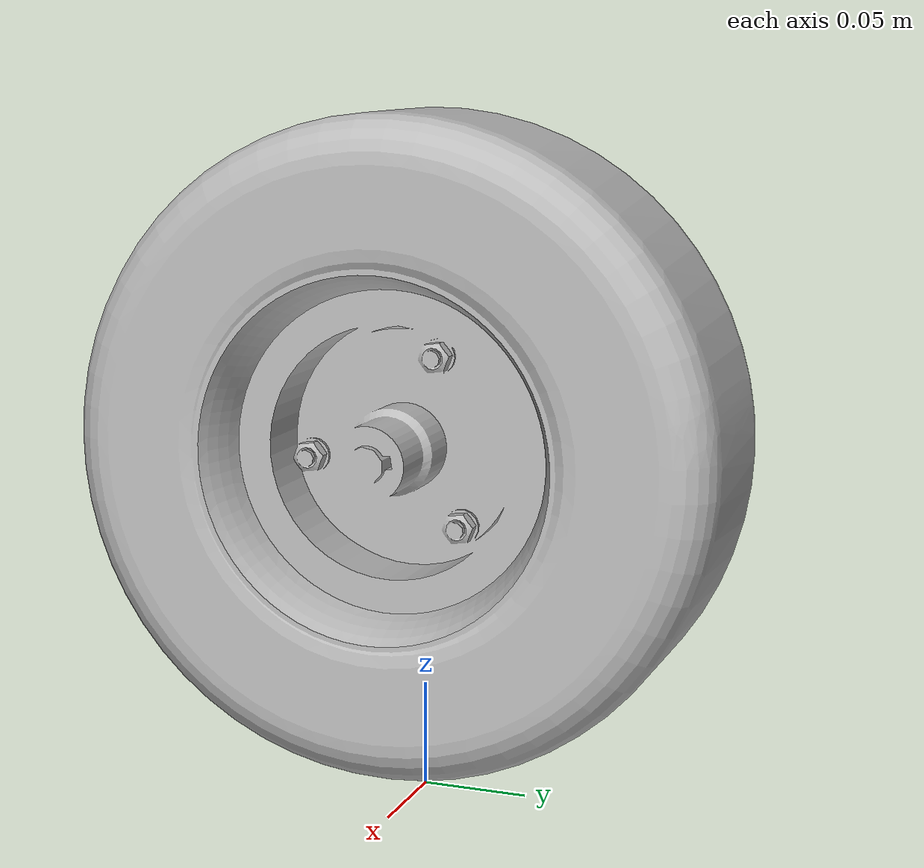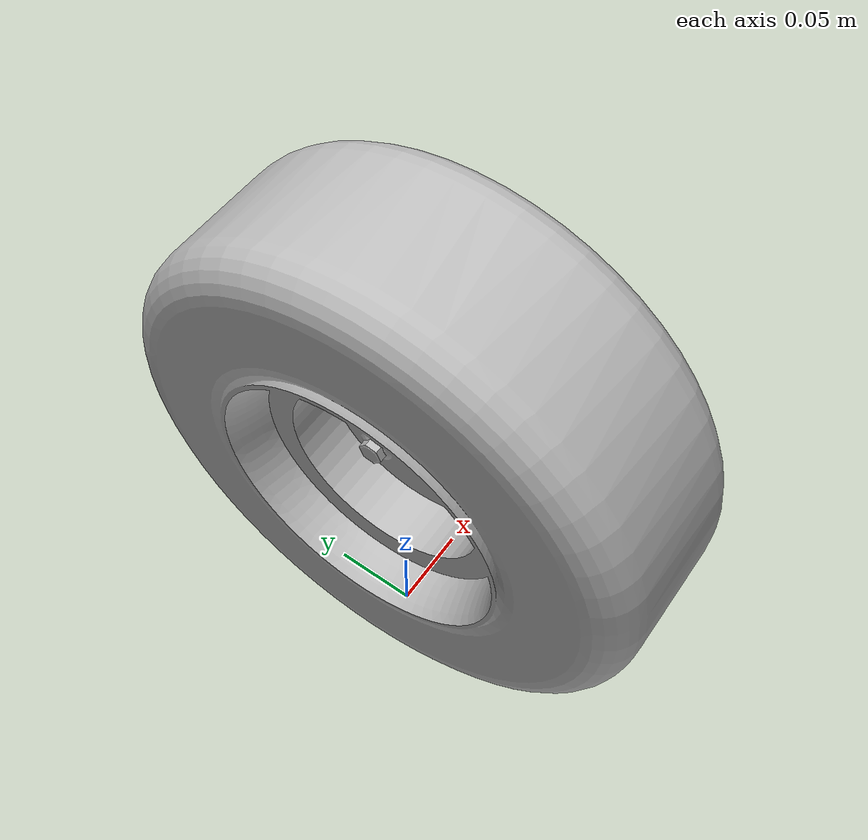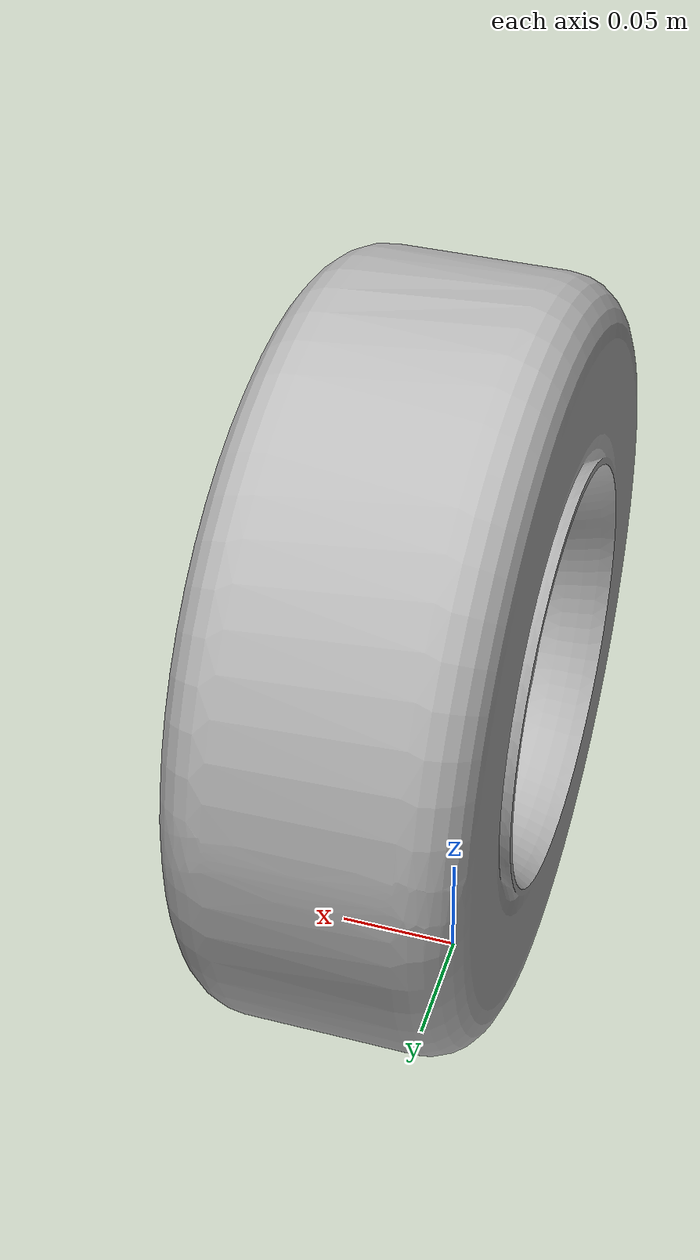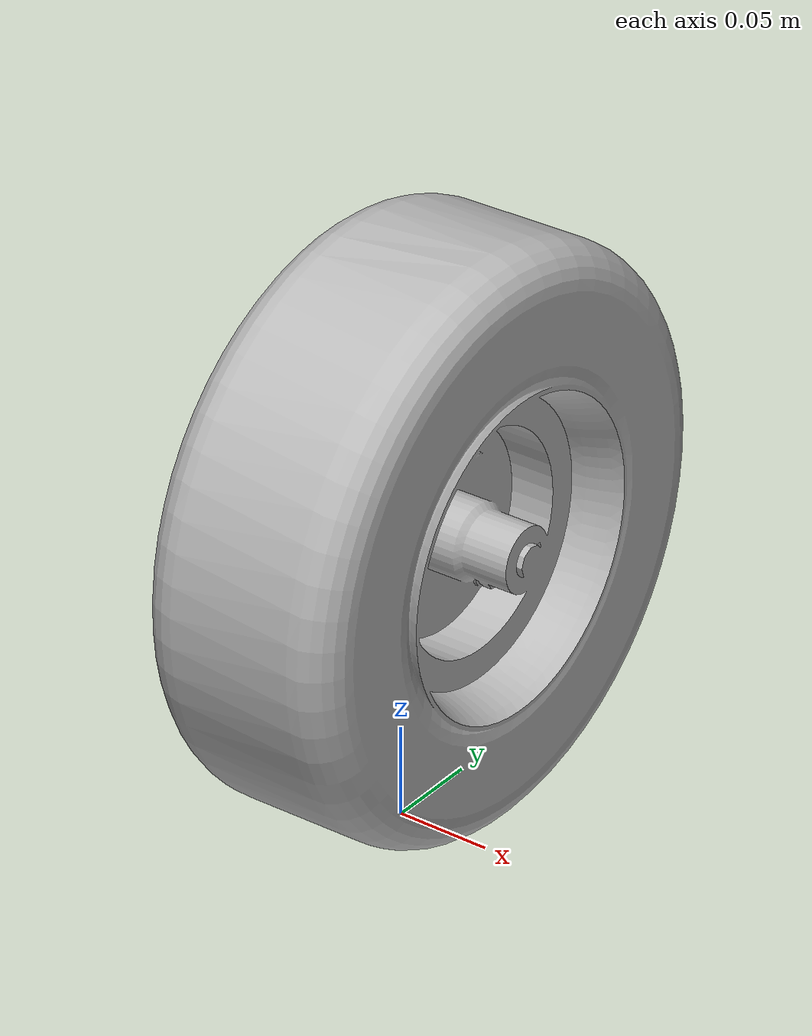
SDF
<sdf version="1.9">
  <model name="wheel">
    <static>true</static>
    <link name="wheel_link">
      <!-- Lift the entire link by 0.30 meters -->
      <pose>0 0 0.17 0 0 0</pose>

      <!-- Visual definition -->
      <visual name="wheel_visual">
        <geometry>
          <mesh>
            <uri>model://wheel/meshes/wheel.dae</uri>
            <scale>0.001 0.001 0.001</scale>
          </mesh>
        </geometry>
        <material>
          <pbr>
            <metal>
              <albedo_map>model://wheel/textures/wheel_diffuse.png</albedo_map>
              <normal_map>model://wheel/textures/wheel_normalmap.png</normal_map>
              <roughness_map>model://wheel/textures/wheel_roughness.png</roughness_map>
            </metal>
          </pbr>
        </material>
      </visual>

      <!-- Collision definition -->
      <collision name="wheel_collision">
        <geometry>
          <mesh>
            <uri>model://wheel/meshes/wheel.dae</uri>
            <scale>0.001 0.001 0.001</scale>
          </mesh>
        </geometry>
        <surface>
          <contact>
            <collide_without_contact>false</collide_without_contact>
          </contact>
          <bounce>
            <restitution_coefficient>0.0</restitution_coefficient>
          </bounce>
          <friction>
            <ode>
              <mu>1.0</mu>
              <mu2>1.0</mu2>
            </ode>
          </friction>
        </surface>
      </collision>

      <!-- Inertial properties -->
      <inertial>
        <mass>0.5</mass>
        <inertia>
          <ixx>0.001</ixx>
          <iyy>0.001</iyy>
          <izz>0.001</izz>
        </inertia>
      </inertial>
    </link>
  </model>
</sdf>
